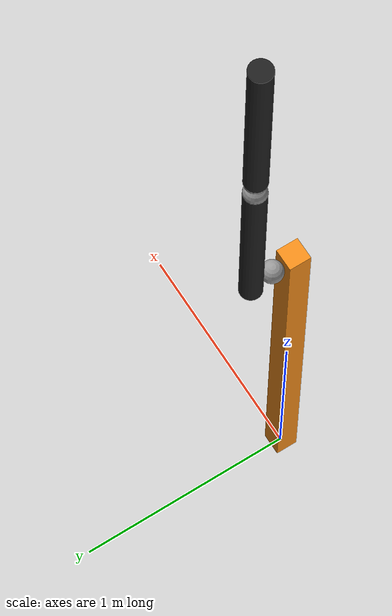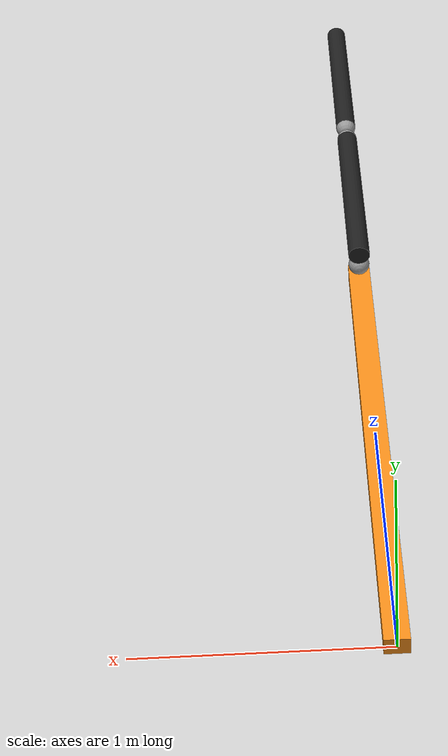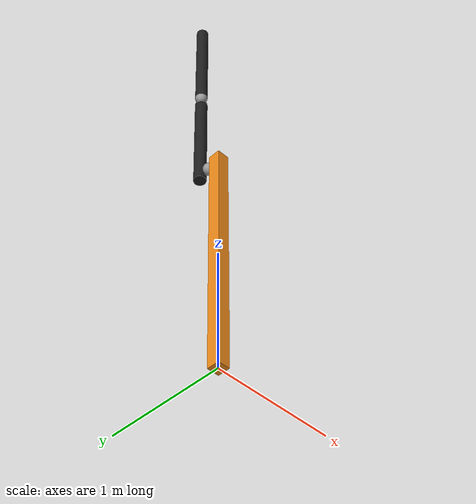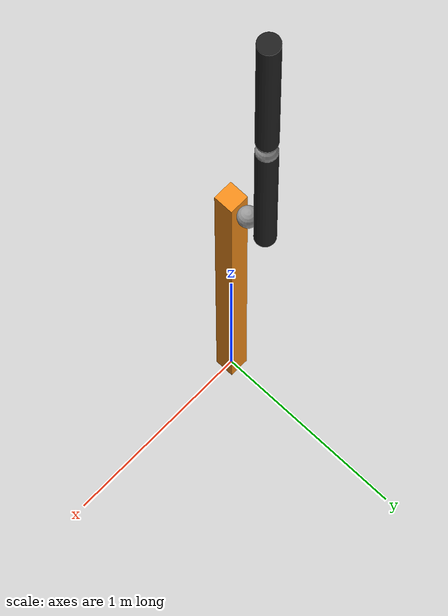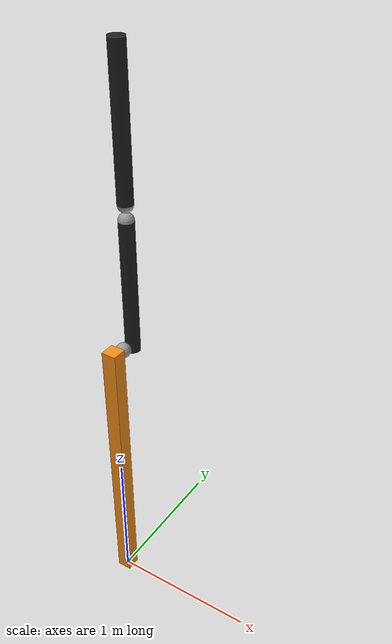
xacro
<?xml version="1.0"?>
<!-- Revolute-Revolute Manipulator -->
<robot name="rrbot" xmlns:xacro="http://www.ros.org/wiki/xacro">

  <!-- Constants for robot dimensions -->
  <xacro:property name="PI" value="3.1415926535897931"/>
  <xacro:property name="mass" value="1" /> <!-- arbitrary value for mass -->
  <xacro:property name="width" value="0.1" /> <!-- Square dimensions (widthxwidth) of beams -->
  <xacro:property name="height1" value="2" /> <!-- Link 1 -->
  <xacro:property name="height2" value="0.9" /> <!-- Link 2 -->
  <xacro:property name="height3" value="0.9" /> <!-- Link 3 -->
  <xacro:property name="camera_link" value="0.05" /> <!-- Size of square 'camera' box -->
  <xacro:property name="axel_offset" value="0.05" /> <!-- Space btw top of beam and the each joint -->

  <!-- Import all Gazebo-customization elements, including Gazebo colors -->
  <!-- Import Rviz colors -->
  <xacro:include filename="$(find rrbot_description)/urdf/materials.xacro" />

  <!-- Used for fixing robot to Gazebo 'base_link' -->
  <link name="world"/>

  <joint name="fixed" type="fixed">
    <parent link="world"/>
    <child link="link1"/>
  </joint>

  <joint name="fixed1" type="fixed">
    <parent link="link2"/>
    <child link="linkElbow1"/>
    <origin xyz="0 0 ${height2 - axel_offset}" rpy="0 0 0"/>
  </joint>
  <link name="linkElbow1">
    <collision>
      <origin xyz="0 0 ${width/2 - axel_offset}" rpy="0 0 0"/>
      <geometry>
	<sphere radius="${width/2}"/>
      </geometry>
    </collision>

    <visual>
      <origin xyz="0 0 ${width/2 - axel_offset}" rpy="0 0 0"/>
      <geometry>
	<sphere radius="${width/2}"/>
      </geometry>
      <material name="grey"/>
    </visual>

    <inertial>
      <origin xyz="0 0 ${width/2 - axel_offset}" rpy="0 0 0"/>
      <mass value="${mass}"/>
      <inertia
	  ixx="${mass / 12.0 * (width*width + width*width)}" ixy="0.0" ixz="0.0"
	  iyy="${mass / 12.0 * (width*width + width*width)}" iyz="0.0"
	  izz="${mass / 12.0 * (width*width + width*width)}"/>
    </inertial>
  </link>

  <joint name="fixed2" type="fixed">
    <parent link="linkElbow2"/>
    <child link="link3"/>
    <origin xyz="0 0 ${axel_offset}" rpy="0 0 0"/>
  </joint>
  <link name="linkElbow2">
    <collision>
      <origin xyz="0 0 ${width/2 - axel_offset}" rpy="0 0 0"/>
      <geometry>
	<sphere radius="${width/2}"/>
      </geometry>
    </collision>

    <visual>
      <origin xyz="0 0 ${width/2 - axel_offset}" rpy="0 0 0"/>
      <geometry>
	<sphere radius="${width/2}"/>
      </geometry>
      <material name="grey"/>
    </visual>

    <inertial>
      <origin xyz="0 0 ${width/2 - axel_offset}" rpy="0 0 0"/>
      <mass value="${mass}"/>
      <inertia
	  ixx="${mass / 12.0 * (width*width + width*width)}" ixy="0.0" ixz="0.0"
	  iyy="${mass / 12.0 * (width*width + width*width)}" iyz="0.0"
	  izz="${mass / 12.0 * (width*width + width*width)}"/>
    </inertial>
  </link>

  <!-- Base Link -->
  <link name="link1">
    <collision>
      <origin xyz="0 0 ${height1/2}" rpy="0 0 0"/>
      <geometry>
	<box size="${width} ${width} ${height1}"/>
      </geometry>
    </collision>

    <visual>
      <origin xyz="0 0 ${height1/2}" rpy="0 0 0"/>
      <geometry>
	<box size="${width} ${width} ${height1}"/>
      </geometry>
      <material name="orange"/>
    </visual>

    <inertial>
      <origin xyz="0 0 ${height1/2}" rpy="0 0 0"/>
      <mass value="${mass}"/>
      <inertia
	  ixx="${mass / 12.0 * (width*width + height1*height1)}" ixy="0.0" ixz="0.0"
	  iyy="${mass / 12.0 * (height1*height1 + width*width)}" iyz="0.0"
	  izz="${mass / 12.0 * (width*width + width*width)}"/>
    </inertial>
  </link>
  <joint name="joint1" type="continuous">
    <parent link="link21"/>
    <child link="link2"/>
    <origin xyz="0 ${width} 0" rpy="0 0 0"/>
    <axis xyz="1 0 0"/>
    <dynamics damping="0.7"/>
  </joint>

  <link name="link21">
    <collision>
      <origin xyz="0 0 ${width/2 - axel_offset}" rpy="0 0 0"/>
      <geometry>
	<sphere radius="${width/2}"/>
      </geometry>
    </collision>

    <visual>
      <origin xyz="0 0 ${width/2 - axel_offset}" rpy="0 0 0"/>
      <geometry>
	<sphere radius="${width/2}"/>
      </geometry>
      <material name="grey"/>
    </visual>

    <inertial>
      <origin xyz="0 0 ${width/2 - axel_offset}" rpy="0 0 0"/>
      <mass value="${mass}"/>
      <inertia
	  ixx="${mass / 12.0 * (width*width + width*width)}" ixy="0.0" ixz="0.0"
	  iyy="${mass / 12.0 * (width*width + width*width)}" iyz="0.0"
	  izz="${mass / 12.0 * (width*width + width*width)}"/>
    </inertial>
  </link>
  <joint name="joint2" type="continuous">
    <parent link="link1"/>
    <child link="link21"/>
    <origin xyz="0 ${width} ${height1 - axel_offset}" rpy="0 0 0"/>
    <axis xyz="0 1 0"/>
    <dynamics damping="0.7"/>
  </joint>

  <!-- Middle Link -->
  <link name="link2">
    <collision>
      <origin xyz="0 0 ${height2/2 - axel_offset}" rpy="0 0 0"/>
      <geometry>
        <cylinder length="${height3}" radius="${width/2}"/>
      </geometry>
    </collision>

    <visual>
      <origin xyz="0 0 ${height2/2 - axel_offset}" rpy="0 0 0"/>
      <geometry>
	 <cylinder length="${height3}" radius="${width/2}"/>
      </geometry>
      <material name="black"/>
    </visual>

    <inertial>
      <origin xyz="0 0 ${height2/2 - axel_offset}" rpy="0 0 0"/>
      <mass value="${mass}"/>
      <inertia
	  ixx="${mass / 12.0 * (width*width + height2*height2)}" ixy="0.0" ixz="0.0"
	  iyy="${mass / 12.0 * (height2*height2 + width*width)}" iyz="0.0"
	  izz="${mass / 12.0 * (width*width + width*width)}"/>
    </inertial>
  </link>

  <joint name="joint3" type="continuous">
    <parent link="linkElbow1"/>
    <child link="linkElbow2"/>
    <origin xyz="0 0 ${axel_offset*2}" rpy="0 0 0"/>
    <axis xyz="0 1 0"/>
    <dynamics damping="0.7"/>
  </joint>

  <!-- Top Link -->
  <link name="link3">
    <collision>
      <origin xyz="0 0 ${height3/2 - axel_offset}" rpy="0 0 0"/>
      <geometry>
        <cylinder length="${height3}" radius="${width/2}"/>
      </geometry>
    </collision>

    <visual>
      <origin xyz="0 0 ${height3/2 - axel_offset}" rpy="0 0 0"/>
      <geometry>
        <cylinder length="${height3}" radius="${width/2}"/>
      </geometry>
      <material name="black"/>
    </visual>

    <inertial>
      <origin xyz="0 0 ${height3/2 - axel_offset}" rpy="0 0 0"/>
      <mass value="${mass}"/>
      <inertia
	  ixx="${mass / 12.0 * (width*width + height3*height3)}" ixy="0.0" ixz="0.0"
	  iyy="${mass / 12.0 * (height3*height3 + width*width)}" iyz="0.0"
	  izz="${mass / 12.0 * (width*width + width*width)}"/>
    </inertial>
  </link>

  <!-- generate an optical frame http://www.ros.org/reps/rep-0103.html#suffix-frames
      so that ros and opencv can operate on the camera frame correctly -->
    <!-- these values have to be these values otherwise the gazebo camera image
        won't be aligned properly with the frame it is supposedly originating from -->

  <transmission name="tran0">
    <type>transmission_interface/SimpleTransmission</type>
    <joint name="joint0">
      <hardwareInterface>hardware_interface/EffortJointInterface</hardwareInterface>
    </joint>
    <actuator name="motor0">
      <hardwareInterface>hardware_interface/EffortJointInterface</hardwareInterface>
      <mechanicalReduction>1</mechanicalReduction>
    </actuator>
  </transmission>

  <transmission name="tran1">
    <type>transmission_interface/SimpleTransmission</type>
    <joint name="joint1">
      <hardwareInterface>hardware_interface/EffortJointInterface</hardwareInterface>
    </joint>
    <actuator name="motor1">
      <hardwareInterface>hardware_interface/EffortJointInterface</hardwareInterface>
      <mechanicalReduction>1</mechanicalReduction>
    </actuator>
  </transmission>

  <transmission name="tran2">
    <type>transmission_interface/SimpleTransmission</type>
    <joint name="joint2">
      <hardwareInterface>hardware_interface/EffortJointInterface</hardwareInterface>
    </joint>
    <actuator name="motor2">
      <hardwareInterface>hardware_interface/EffortJointInterface</hardwareInterface>
      <mechanicalReduction>1</mechanicalReduction>
    </actuator>
  </transmission>

  <transmission name="tran3">
    <type>transmission_interface/SimpleTransmission</type>
    <joint name="joint3">
      <hardwareInterface>hardware_interface/EffortJointInterface</hardwareInterface>
    </joint>
    <actuator name="motor3">
      <hardwareInterface>hardware_interface/EffortJointInterface</hardwareInterface>
      <mechanicalReduction>1</mechanicalReduction>
    </actuator>
  </transmission>

</robot>
